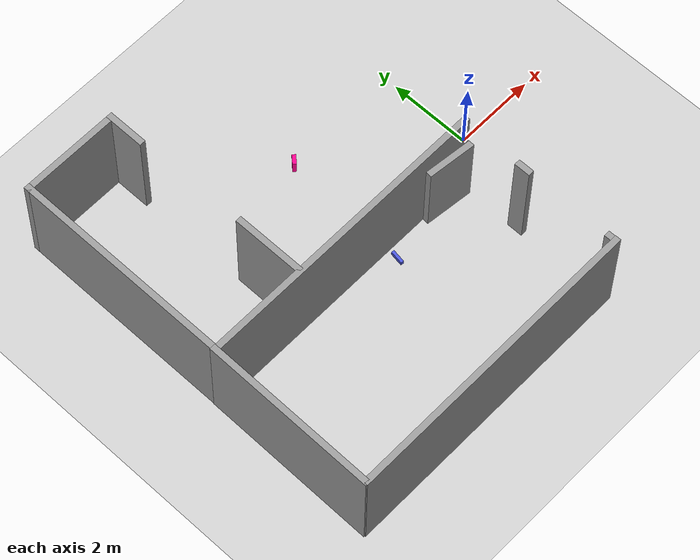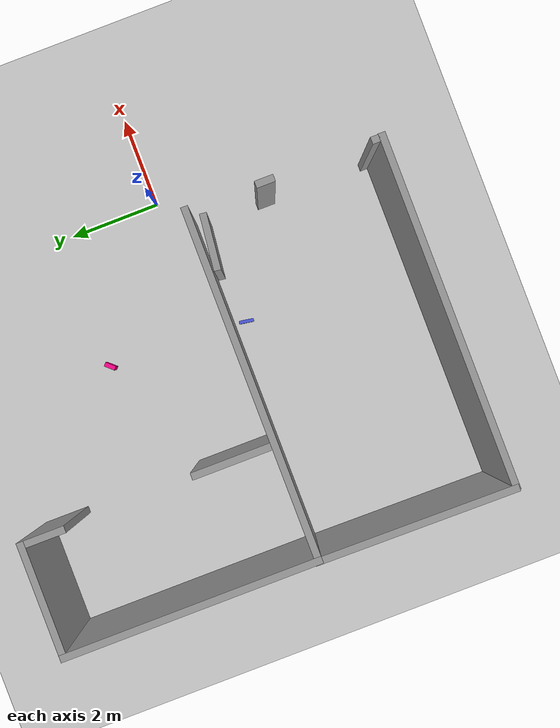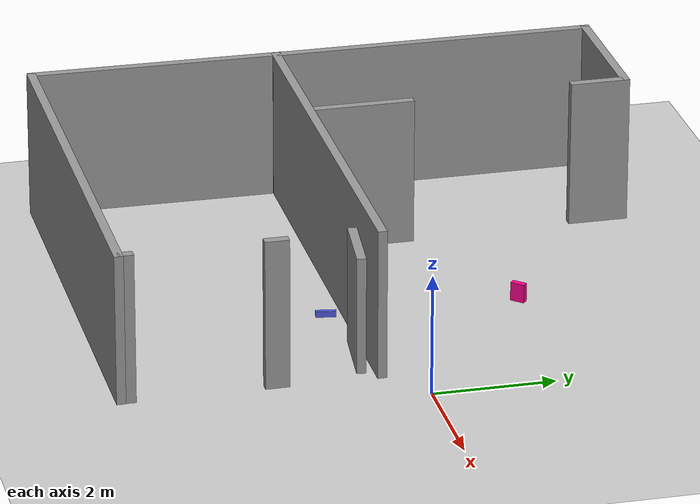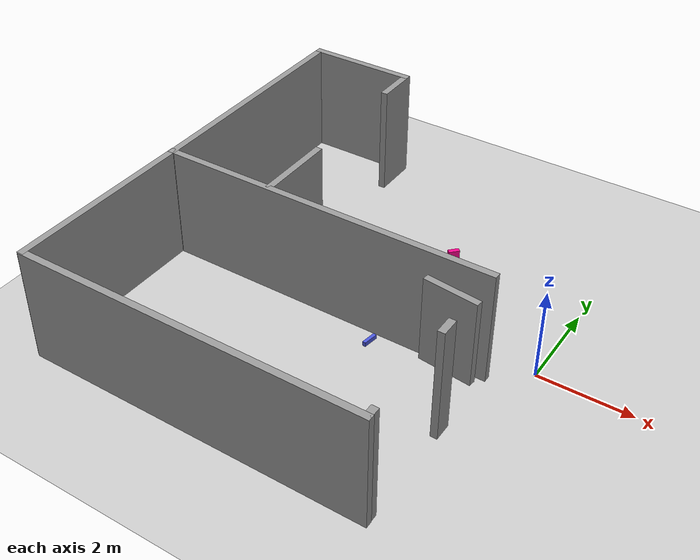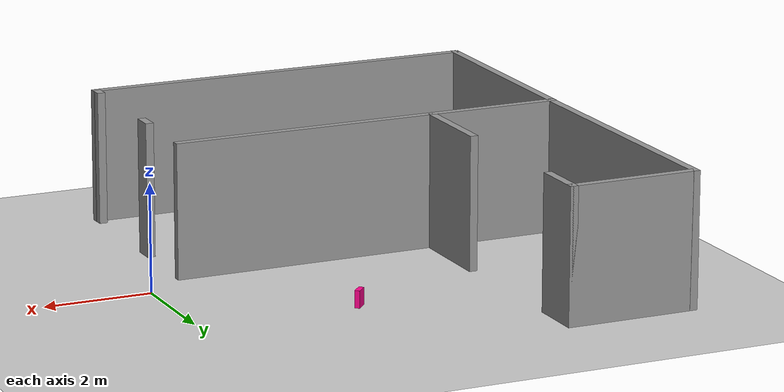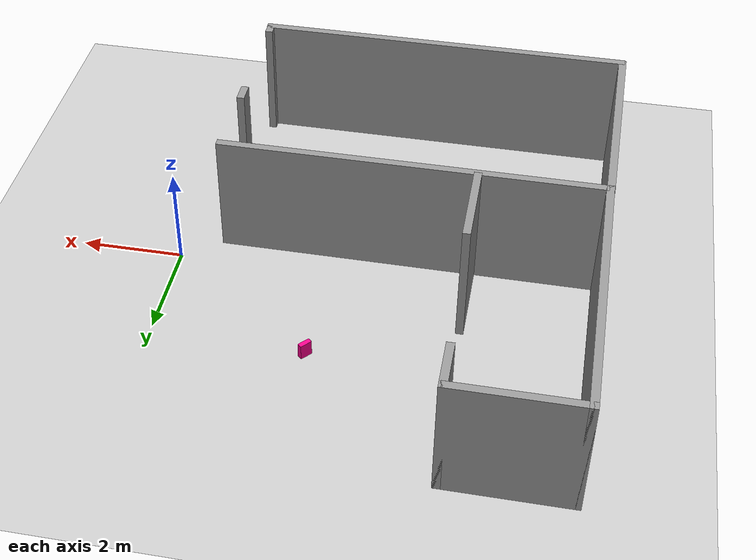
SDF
<sdf version="1.6">
 <world name="default">
  <model name="demo_clean">
   <static>1</static>
   <link name="Wall_0">
    <collision name="Wall_0_Collision">
     <geometry><box><size>5.5 0.15 2.5</size></box></geometry>
     <pose>0 0 1.25 0 -0 0</pose>
     <surface>
      <friction>
       <ode><mu>1.0</mu><mu2>1.0</mu2><fdir1>0 0 0</fdir1><slip1>0.0</slip1><slip2>0.0</slip2></ode>
       <torsional>
        <coefficient>1.0</coefficient>
        <patch_radius>0.0</patch_radius>
        <surface_radius>0.0</surface_radius>
        <use_patch_radius>1</use_patch_radius>
        <ode><slip>0.0</slip></ode>
       </torsional>
      </friction>
      <bounce><restitution_coefficient>0.0</restitution_coefficient><threshold>1000000.0</threshold></bounce>
      <contact>
       <collide_without_contact>0</collide_without_contact>
       <collide_without_contact_bitmask>1</collide_without_contact_bitmask>
       <collide_bitmask>1</collide_bitmask>
       <ode>
        <soft_cfm>0.0</soft_cfm>
        <soft_erp>0.2</soft_erp>
        <kp>10000000000000.0</kp>
        <kd>1.0</kd>
        <max_vel>0.01</max_vel>
        <min_depth>0.0</min_depth>
       </ode>
       <bullet>
        <split_impulse>1</split_impulse>
        <split_impulse_penetration_threshold>-0.01</split_impulse_penetration_threshold>
        <soft_cfm>0.0</soft_cfm>
        <soft_erp>0.2</soft_erp>
        <kp>10000000000000.0</kp>
        <kd>1.0</kd>
       </bullet>
      </contact>
     </surface>
    </collision>
    <visual name="Wall_0_Visual">
     <geometry><box><size>5.5 0.15 2.5</size></box></geometry>
     <material>
      <script><name>Gazebo/Grey</name><uri>file://media/materials/scripts/gazebo.material</uri></script>
      <ambient>1 1 1 1</ambient>
      <shader type="pixel"><normal_map>default</normal_map></shader>
     </material>
     <pose>0 0 1.25 0 -0 0</pose>
     <transparency>0.0</transparency>
    </visual>
    <pose>-8.14649 2.06618 0 0 0 -1.5708</pose>
   </link>
   <link name="Wall_1">
    <collision name="Wall_1_Collision">
     <geometry><box><size>4.27044 0.15 2.5</size></box></geometry>
     <pose>0 0 1.25 0 -0 0</pose>
     <surface>
      <friction>
       <ode><mu>1.0</mu><mu2>1.0</mu2><fdir1>0 0 0</fdir1><slip1>0.0</slip1><slip2>0.0</slip2></ode>
       <torsional>
        <coefficient>1.0</coefficient>
        <patch_radius>0.0</patch_radius>
        <surface_radius>0.0</surface_radius>
        <use_patch_radius>1</use_patch_radius>
        <ode><slip>0.0</slip></ode>
       </torsional>
      </friction>
      <bounce><restitution_coefficient>0.0</restitution_coefficient><threshold>1000000.0</threshold></bounce>
      <contact>
       <collide_without_contact>0</collide_without_contact>
       <collide_without_contact_bitmask>1</collide_without_contact_bitmask>
       <collide_bitmask>1</collide_bitmask>
       <ode>
        <soft_cfm>0.0</soft_cfm>
        <soft_erp>0.2</soft_erp>
        <kp>10000000000000.0</kp>
        <kd>1.0</kd>
        <max_vel>0.01</max_vel>
        <min_depth>0.0</min_depth>
       </ode>
       <bullet>
        <split_impulse>1</split_impulse>
        <split_impulse_penetration_threshold>-0.01</split_impulse_penetration_threshold>
        <soft_cfm>0.0</soft_cfm>
        <soft_erp>0.2</soft_erp>
        <kp>10000000000000.0</kp>
        <kd>1.0</kd>
       </bullet>
      </contact>
     </surface>
    </collision>
    <visual name="Wall_1_Visual">
     <geometry><box><size>4.27044 0.15 2.5</size></box></geometry>
     <material>
      <script><name>Gazebo/Grey</name><uri>file://media/materials/scripts/gazebo.material</uri></script>
      <ambient>1 1 1 1</ambient>
      <shader type="pixel"><normal_map>default</normal_map></shader>
     </material>
     <pose>0 0 1.25 0 -0 0</pose>
     <transparency>0.0</transparency>
    </visual>
    <pose>-8.17617 -2.66151 0 0 0 -1.58051</pose>
   </link>
   <link name="Wall_2">
    <collision name="Wall_2_Collision">
     <geometry><box><size>7.5 0.15 2.5</size></box></geometry>
     <pose>0 0 1.25 0 -0 0</pose>
     <surface>
      <friction>
       <ode><mu>1.0</mu><mu2>1.0</mu2><fdir1>0 0 0</fdir1><slip1>0.0</slip1><slip2>0.0</slip2></ode>
       <torsional>
        <coefficient>1.0</coefficient>
        <patch_radius>0.0</patch_radius>
        <surface_radius>0.0</surface_radius>
        <use_patch_radius>1</use_patch_radius>
        <ode><slip>0.0</slip></ode>
       </torsional>
      </friction>
      <bounce><restitution_coefficient>0.0</restitution_coefficient><threshold>1000000.0</threshold></bounce>
      <contact>
       <collide_without_contact>0</collide_without_contact>
       <collide_without_contact_bitmask>1</collide_without_contact_bitmask>
       <collide_bitmask>1</collide_bitmask>
       <ode>
        <soft_cfm>0.0</soft_cfm>
        <soft_erp>0.2</soft_erp>
        <kp>10000000000000.0</kp>
        <kd>1.0</kd>
        <max_vel>0.01</max_vel>
        <min_depth>0.0</min_depth>
       </ode>
       <bullet>
        <split_impulse>1</split_impulse>
        <split_impulse_penetration_threshold>-0.01</split_impulse_penetration_threshold>
        <soft_cfm>0.0</soft_cfm>
        <soft_erp>0.2</soft_erp>
        <kp>10000000000000.0</kp>
        <kd>1.0</kd>
       </bullet>
      </contact>
     </surface>
    </collision>
    <visual name="Wall_2_Visual">
     <geometry><box><size>7.5 0.15 2.5</size></box></geometry>
     <material>
      <script><name>Gazebo/Grey</name><uri>file://media/materials/scripts/gazebo.material</uri></script>
      <ambient>1 1 1 1</ambient>
      <shader type="pixel"><normal_map>default</normal_map></shader>
     </material>
     <pose>0 0 1.25 0 -0 0</pose>
     <transparency>0.0</transparency>
    </visual>
    <pose>-4.49149 -4.74 0 0 -0 0</pose>
   </link>
   <link name="Wall_21_clone_0">
    <collision name="Wall_21_Collision">
     <geometry><box><size>0.394105 0.15 2.5</size></box></geometry>
     <pose>0 0 1.25 0 -0 0</pose>
     <surface>
      <friction>
       <ode><mu>1.0</mu><mu2>1.0</mu2><fdir1>0 0 0</fdir1><slip1>0.0</slip1><slip2>0.0</slip2></ode>
       <torsional>
        <coefficient>1.0</coefficient>
        <patch_radius>0.0</patch_radius>
        <surface_radius>0.0</surface_radius>
        <use_patch_radius>1</use_patch_radius>
        <ode><slip>0.0</slip></ode>
       </torsional>
      </friction>
      <bounce><restitution_coefficient>0.0</restitution_coefficient><threshold>1000000.0</threshold></bounce>
      <contact>
       <collide_without_contact>0</collide_without_contact>
       <collide_without_contact_bitmask>1</collide_without_contact_bitmask>
       <collide_bitmask>1</collide_bitmask>
       <ode>
        <soft_cfm>0.0</soft_cfm>
        <soft_erp>0.2</soft_erp>
        <kp>10000000000000.0</kp>
        <kd>1.0</kd>
        <max_vel>0.01</max_vel>
        <min_depth>0.0</min_depth>
       </ode>
       <bullet>
        <split_impulse>1</split_impulse>
        <split_impulse_penetration_threshold>-0.01</split_impulse_penetration_threshold>
        <soft_cfm>0.0</soft_cfm>
        <soft_erp>0.2</soft_erp>
        <kp>10000000000000.0</kp>
        <kd>1.0</kd>
       </bullet>
      </contact>
     </surface>
    </collision>
    <visual name="Wall_21_Visual">
     <geometry><box><size>0.394105 0.15 2.5</size></box></geometry>
     <material>
      <script><name>Gazebo/Grey</name><uri>file://media/materials/scripts/gazebo.material</uri></script>
      <ambient>1 1 1 1</ambient>
      <shader type="pixel"><normal_map>default</normal_map></shader>
     </material>
     <pose>0 0 1.25 0 -0 0</pose>
     <transparency>0.0</transparency>
    </visual>
    <inertial>
     <inertia><ixx>0.0</ixx><iyy>0.0</iyy><izz>0.0</izz><ixy>0.0</ixy><ixz>0.0</ixz><iyz>0.0</iyz></inertia>
     <mass>1.0</mass>
    </inertial>
    <pose>-0.820336 -2.26773 0 0 0 -1.5708</pose>
   </link>
   <link name="Wall_21_clone_0_clone_0_clone_clone">
    <gravity>0</gravity>
    <collision name="Wall_21_Collision">
     <geometry><box><size>1.1941 0.15 1.96033</size></box></geometry>
     <pose>0 0 1.25 0 -0 0</pose>
     <surface>
      <friction>
       <ode><mu>1.0</mu><mu2>1.0</mu2><fdir1>0 0 0</fdir1><slip1>0.0</slip1><slip2>0.0</slip2></ode>
       <torsional>
        <coefficient>1.0</coefficient>
        <patch_radius>0.0</patch_radius>
        <surface_radius>0.0</surface_radius>
        <use_patch_radius>1</use_patch_radius>
        <ode><slip>0.0</slip></ode>
       </torsional>
      </friction>
      <bounce><restitution_coefficient>0.0</restitution_coefficient><threshold>1000000.0</threshold></bounce>
      <contact>
       <collide_without_contact>0</collide_without_contact>
       <collide_without_contact_bitmask>1</collide_without_contact_bitmask>
       <collide_bitmask>1</collide_bitmask>
       <ode>
        <soft_cfm>0.0</soft_cfm>
        <soft_erp>0.2</soft_erp>
        <kp>10000000000000.0</kp>
        <kd>1.0</kd>
        <max_vel>0.01</max_vel>
        <min_depth>0.0</min_depth>
       </ode>
       <bullet>
        <split_impulse>1</split_impulse>
        <split_impulse_penetration_threshold>-0.01</split_impulse_penetration_threshold>
        <soft_cfm>0.0</soft_cfm>
        <soft_erp>0.2</soft_erp>
        <kp>10000000000000.0</kp>
        <kd>1.0</kd>
       </bullet>
      </contact>
     </surface>
    </collision>
    <visual name="Wall_21_Visual">
     <geometry><box><size>1.1941 0.15 1.96033</size></box></geometry>
     <material>
      <script><name>Gazebo/Grey</name><uri>file://media/materials/scripts/gazebo.material</uri></script>
      <ambient>1 1 1 1</ambient>
      <shader type="pixel"><normal_map>__default__</normal_map></shader>
      <diffuse>0.7 0.7 0.7 1.0</diffuse>
      <specular>0.01 0.01 0.01 1</specular>
      <emissive>0 0 0 1</emissive>
     </material>
     <pose>0 0 1.25 0 -0 0</pose>
     <transparency>0.0</transparency>
    </visual>
    <inertial>
     <inertia><ixx>0.0</ixx><iyy>0.0</iyy><izz>0.0</izz><ixy>0.0</ixy><ixz>0.0</ixz><iyz>0.0</iyz></inertia>
     <mass>1.0</mass>
    </inertial>
    <pose>-1.47342 -0.839052 -0.23202 0 -0 3.0297</pose>
   </link>
   <link name="Wall_21_clone_clone">
    <collision name="Wall_21_Collision">
     <geometry><box><size>0.240964 0.15 2.5</size></box></geometry>
     <pose>0 0 1.25 0 -0 0</pose>
     <surface>
      <friction>
       <ode><mu>1.0</mu><mu2>1.0</mu2><fdir1>0 0 0</fdir1><slip1>0.0</slip1><slip2>0.0</slip2></ode>
       <torsional>
        <coefficient>1.0</coefficient>
        <patch_radius>0.0</patch_radius>
        <surface_radius>0.0</surface_radius>
        <use_patch_radius>1</use_patch_radius>
        <ode><slip>0.0</slip></ode>
       </torsional>
      </friction>
      <bounce><restitution_coefficient>0.0</restitution_coefficient><threshold>1000000.0</threshold></bounce>
      <contact>
       <collide_without_contact>0</collide_without_contact>
       <collide_without_contact_bitmask>1</collide_without_contact_bitmask>
       <collide_bitmask>1</collide_bitmask>
       <ode>
        <soft_cfm>0.0</soft_cfm>
        <soft_erp>0.2</soft_erp>
        <kp>10000000000000.0</kp>
        <kd>1.0</kd>
        <max_vel>0.01</max_vel>
        <min_depth>0.0</min_depth>
       </ode>
       <bullet>
        <split_impulse>1</split_impulse>
        <split_impulse_penetration_threshold>-0.01</split_impulse_penetration_threshold>
        <soft_cfm>0.0</soft_cfm>
        <soft_erp>0.2</soft_erp>
        <kp>10000000000000.0</kp>
        <kd>1.0</kd>
       </bullet>
      </contact>
     </surface>
    </collision>
    <visual name="Wall_21_Visual">
     <geometry><box><size>0.240964 0.15 2.5</size></box></geometry>
     <material>
      <script><name>Gazebo/Grey</name><uri>file://media/materials/scripts/gazebo.material</uri></script>
      <ambient>1 1 1 1</ambient>
      <shader type="pixel"><normal_map>default</normal_map></shader>
     </material>
     <pose>0 0 1.25 0 -0 0</pose>
     <transparency>0.0</transparency>
    </visual>
    <inertial>
     <inertia><ixx>0.0</ixx><iyy>0.0</iyy><izz>0.0</izz><ixy>0.0</ixy><ixz>0.0</ixz><iyz>0.0</iyz></inertia>
     <mass>1.0</mass>
    </inertial>
    <pose>-0.824993 -4.62184 0 0 0 -1.5708</pose>
   </link>
   <link name="Wall_4">
    <collision name="Wall_4_Collision">
     <geometry><box><size>7.5 0.15 2.5</size></box></geometry>
     <pose>0 0 1.25 0 -0 0</pose>
     <surface>
      <friction>
       <ode><mu>1.0</mu><mu2>1.0</mu2><fdir1>0 0 0</fdir1><slip1>0.0</slip1><slip2>0.0</slip2></ode>
       <torsional>
        <coefficient>1.0</coefficient>
        <patch_radius>0.0</patch_radius>
        <surface_radius>0.0</surface_radius>
        <use_patch_radius>1</use_patch_radius>
        <ode><slip>0.0</slip></ode>
       </torsional>
      </friction>
      <bounce><restitution_coefficient>0.0</restitution_coefficient><threshold>1000000.0</threshold></bounce>
      <contact>
       <collide_without_contact>0</collide_without_contact>
       <collide_without_contact_bitmask>1</collide_without_contact_bitmask>
       <collide_bitmask>1</collide_bitmask>
       <ode>
        <soft_cfm>0.0</soft_cfm>
        <soft_erp>0.2</soft_erp>
        <kp>10000000000000.0</kp>
        <kd>1.0</kd>
        <max_vel>0.01</max_vel>
        <min_depth>0.0</min_depth>
       </ode>
       <bullet>
        <split_impulse>1</split_impulse>
        <split_impulse_penetration_threshold>-0.01</split_impulse_penetration_threshold>
        <soft_cfm>0.0</soft_cfm>
        <soft_erp>0.2</soft_erp>
        <kp>10000000000000.0</kp>
        <kd>1.0</kd>
       </bullet>
      </contact>
     </surface>
    </collision>
    <visual name="Wall_4_Visual">
     <geometry><box><size>7.5 0.15 2.5</size></box></geometry>
     <material>
      <script><name>Gazebo/Grey</name><uri>file://media/materials/scripts/gazebo.material</uri></script>
      <ambient>1 1 1 1</ambient>
      <shader type="pixel"><normal_map>default</normal_map></shader>
     </material>
     <pose>0 0 1.25 0 -0 0</pose>
     <transparency>0.0</transparency>
    </visual>
    <pose>-4.47149 -0.608824 0 0 -0 3.14159</pose>
   </link>
   <link name="Wall_44">
    <collision name="Wall_44_Collision">
     <geometry><box><size>1.75 0.15 2.5</size></box></geometry>
     <pose>0 0 1.25 0 -0 0</pose>
     <surface>
      <friction>
       <ode><mu>1.0</mu><mu2>1.0</mu2><fdir1>0 0 0</fdir1><slip1>0.0</slip1><slip2>0.0</slip2></ode>
       <torsional>
        <coefficient>1.0</coefficient>
        <patch_radius>0.0</patch_radius>
        <surface_radius>0.0</surface_radius>
        <use_patch_radius>1</use_patch_radius>
        <ode><slip>0.0</slip></ode>
       </torsional>
      </friction>
      <bounce><restitution_coefficient>0.0</restitution_coefficient><threshold>1000000.0</threshold></bounce>
      <contact>
       <collide_without_contact>0</collide_without_contact>
       <collide_without_contact_bitmask>1</collide_without_contact_bitmask>
       <collide_bitmask>1</collide_bitmask>
       <ode>
        <soft_cfm>0.0</soft_cfm>
        <soft_erp>0.2</soft_erp>
        <kp>10000000000000.0</kp>
        <kd>1.0</kd>
        <max_vel>0.01</max_vel>
        <min_depth>0.0</min_depth>
       </ode>
       <bullet>
        <split_impulse>1</split_impulse>
        <split_impulse_penetration_threshold>-0.01</split_impulse_penetration_threshold>
        <soft_cfm>0.0</soft_cfm>
        <soft_erp>0.2</soft_erp>
        <kp>10000000000000.0</kp>
        <kd>1.0</kd>
       </bullet>
      </contact>
     </surface>
    </collision>
    <visual name="Wall_44_Visual">
     <geometry><box><size>1.75 0.15 2.5</size></box></geometry>
     <material>
      <script><name>Gazebo/Grey</name><uri>file://media/materials/scripts/gazebo.material</uri></script>
      <ambient>1 1 1 1</ambient>
      <shader type="pixel"><normal_map>default</normal_map></shader>
     </material>
     <pose>0 0 1.25 0 -0 0</pose>
     <transparency>0.0</transparency>
    </visual>
    <pose>-5.71903 0.262602 0 0 0 -1.5708</pose>
   </link>
   <link name="Wall_6">
    <collision name="Wall_6_Collision">
     <geometry><box><size>2.5 0.15 2.5</size></box></geometry>
     <pose>0 0 1.25 0 -0 0</pose>
     <surface>
      <friction>
       <ode><mu>1.0</mu><mu2>1.0</mu2><fdir1>0 0 0</fdir1><slip1>0.0</slip1><slip2>0.0</slip2></ode>
       <torsional>
        <coefficient>1.0</coefficient>
        <patch_radius>0.0</patch_radius>
        <surface_radius>0.0</surface_radius>
        <use_patch_radius>1</use_patch_radius>
        <ode><slip>0.0</slip></ode>
       </torsional>
      </friction>
      <bounce><restitution_coefficient>0.0</restitution_coefficient><threshold>1000000.0</threshold></bounce>
      <contact>
       <collide_without_contact>0</collide_without_contact>
       <collide_without_contact_bitmask>1</collide_without_contact_bitmask>
       <collide_bitmask>1</collide_bitmask>
       <ode>
        <soft_cfm>0.0</soft_cfm>
        <soft_erp>0.2</soft_erp>
        <kp>10000000000000.0</kp>
        <kd>1.0</kd>
        <max_vel>0.01</max_vel>
        <min_depth>0.0</min_depth>
       </ode>
       <bullet>
        <split_impulse>1</split_impulse>
        <split_impulse_penetration_threshold>-0.01</split_impulse_penetration_threshold>
        <soft_cfm>0.0</soft_cfm>
        <soft_erp>0.2</soft_erp>
        <kp>10000000000000.0</kp>
        <kd>1.0</kd>
       </bullet>
      </contact>
     </surface>
    </collision>
    <visual name="Wall_6_Visual">
     <geometry><box><size>2.5 0.15 2.5</size></box></geometry>
     <material>
      <script><name>Gazebo/Grey</name><uri>file://media/materials/scripts/gazebo.material</uri></script>
      <ambient>1 1 1 1</ambient>
      <shader type="pixel"><normal_map>default</normal_map></shader>
     </material>
     <pose>0 0 1.25 0 -0 0</pose>
     <transparency>0.0</transparency>
    </visual>
    <pose>-6.97149 4.74118 0 0 -0 0</pose>
   </link>
   <link name="Wall_7">
    <collision name="Wall_7_Collision">
     <geometry><box><size>1 0.15 2.5</size></box></geometry>
     <pose>0 0 1.25 0 -0 0</pose>
     <surface>
      <friction>
       <ode><mu>1.0</mu><mu2>1.0</mu2><fdir1>0 0 0</fdir1><slip1>0.0</slip1><slip2>0.0</slip2></ode>
       <torsional>
        <coefficient>1.0</coefficient>
        <patch_radius>0.0</patch_radius>
        <surface_radius>0.0</surface_radius>
        <use_patch_radius>1</use_patch_radius>
        <ode><slip>0.0</slip></ode>
       </torsional>
      </friction>
      <bounce><restitution_coefficient>0.0</restitution_coefficient><threshold>1000000.0</threshold></bounce>
      <contact>
       <collide_without_contact>0</collide_without_contact>
       <collide_without_contact_bitmask>1</collide_without_contact_bitmask>
       <collide_bitmask>1</collide_bitmask>
       <ode>
        <soft_cfm>0.0</soft_cfm>
        <soft_erp>0.2</soft_erp>
        <kp>10000000000000.0</kp>
        <kd>1.0</kd>
        <max_vel>0.01</max_vel>
        <min_depth>0.0</min_depth>
       </ode>
       <bullet>
        <split_impulse>1</split_impulse>
        <split_impulse_penetration_threshold>-0.01</split_impulse_penetration_threshold>
        <soft_cfm>0.0</soft_cfm>
        <soft_erp>0.2</soft_erp>
        <kp>10000000000000.0</kp>
        <kd>1.0</kd>
       </bullet>
      </contact>
     </surface>
    </collision>
    <visual name="Wall_7_Visual">
     <geometry><box><size>1 0.15 2.5</size></box></geometry>
     <material>
      <script><name>Gazebo/Grey</name><uri>file://media/materials/scripts/gazebo.material</uri></script>
      <ambient>1 1 1 1</ambient>
      <shader type="pixel"><normal_map>default</normal_map></shader>
     </material>
     <pose>0 0 1.25 0 -0 0</pose>
     <transparency>0.0</transparency>
    </visual>
    <pose>-5.79649 4.31618 0 0 0 -1.5708</pose>
   </link>
  </model>
  <model name="dyn_box">
   <pose>-2.99559 2.20548 0.158838 0 -0 0.829273</pose>
   <static>0</static>
   <allow_auto_disable>0</allow_auto_disable>
   <link name="link">
    <collision name="collision">
     <geometry><box><size>0.242962 0.094457 0.317677</size></box></geometry>
     <max_contacts>20</max_contacts>
    </collision>
    <visual name="visual">
     <geometry><box><size>0.242962 0.094457 0.317677</size></box></geometry>
     <material>
      <ambient>1 0.00784314 0.552941 1</ambient>
      <diffuse>1.0 0.00784313725490196 0.5529411764705883 1</diffuse>
     </material>
     <transparency>0.0</transparency>
    </visual>
    <inertial>
     <inertia>
      <ixx>0.0040275210672093735</ixx>
      <iyy>0.005864840108686885</iyy>
      <izz>0.0024916124263487114</izz>
      <ixy>0.0</ixy>
      <ixz>0.0</ixz>
      <iyz>0.0</iyz>
     </inertia>
     <mass>0.4400029895874237</mass>
    </inertial>
   </link>
  </model>
  <model name="dyn_box_1">
   <pose>-3.1254 -0.944254 0.0505758 0 0 -0.158492</pose>
   <static>0</static>
   <allow_auto_disable>0</allow_auto_disable>
   <link name="link">
    <collision name="collision">
     <geometry><box><size>0.0718623 0.329219 0.101152</size></box></geometry>
     <max_contacts>20</max_contacts>
    </collision>
    <visual name="visual">
     <geometry><box><size>0.0718623 0.329219 0.101152</size></box></geometry>
     <material>
      <ambient>0.294118 0.341176 0.858824 1</ambient>
      <diffuse>0.29411764705882354 0.3411764705882353 0.8588235294117647 1</diffuse>
     </material>
     <transparency>0.0</transparency>
    </visual>
    <inertial>
     <inertia>
      <ixx>0.000988471464820662</ixx>
      <iyy>0.0001282986910684558</iyy>
      <izz>0.0009462425246153351</izz>
      <ixy>0.0</ixy>
      <ixz>0.0</ixz>
      <iyz>0.0</iyz>
     </inertia>
     <mass>0.1</mass>
    </inertial>
   </link>
  </model>
  <include><uri>model://ground_plane</uri><name>ground_plane</name><static>1</static></include>
 </world>
</sdf>
